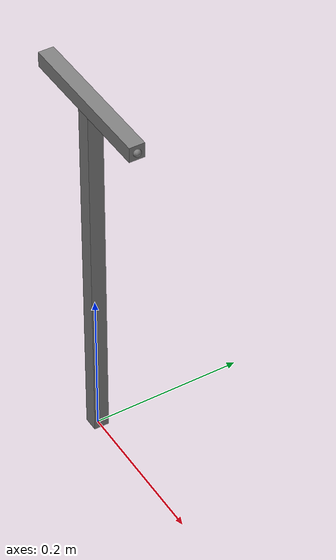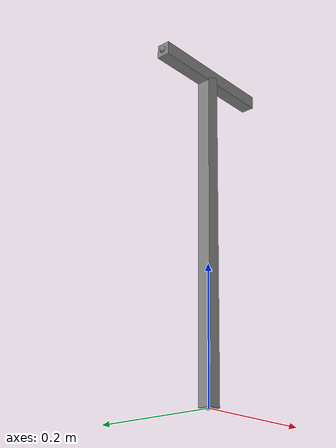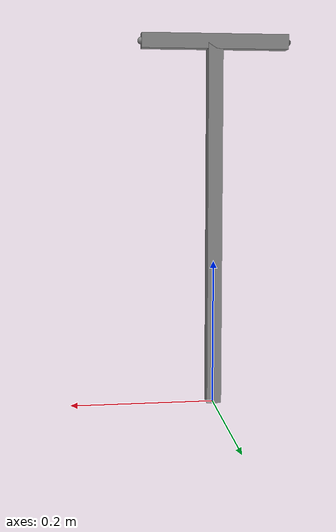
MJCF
<mujoco>
    <compiler angle = "degree"/>
    <option>
        <flag gravity = "enable" contact = "disable"/>

    </option>
    <asset>
        <texture name="grid" type="2d" builtin="checker" rgb1=".1 .2 .3"
            rgb2=".2 .3 .4" width="300" height="300" mark="none"/>
        <material name="grid" texture="grid" texrepeat="1 1"
            texuniform="true" reflectance=".2"/>
    </asset>

    <worldbody>

        <body name = "pendulum" gravcomp = "0">-->
            <joint name = "pend_joint" type = "hinge" axis = "0 1 0" pos = "0 0 0"/>
            <geom name = "pend_stick" type = "box" fromto = "0 0 0 0 0 .5" size = ".01 .01" mass = "1"/>
            <body name = "prop_bar" pos = "0 0 .5" gravcomp = "0">
                <joint name = "prop_orientation_joint" type = "hinge" axis = "0 1 0"/>
                <geom name = "propeller_body" type = "box" size = ".01 .01 .1" mass = "1" axisangle = "0 1 0 90"/>
                <site name = "IMU_loc"/>
                <site name = "prop_1" pos = "-.1 0 0"/>
                <site name = "prop_2" pos = ".1 0 0"/>
            </body>
        </body>

    </worldbody>

    <actuator>
        <motor name = "propeller1" site = "prop_1" gear = "0 0 1 0 0 0"/>
        <motor name = "propeller2" site = "prop_2" gear = "0 0 1 0 0 0"/>
    </actuator>

    <sensor>
        <accelerometer name = "IMU_acc" site = "IMU_loc" noise = ".01"/>
        <gyro name = "IMU_gyro" site = "IMU_loc" noise = ".01"/>

        <jointpos name = "angle_2_sens" joint = "prop_orientation_joint" noise = "0.05"/>
    </sensor>

</mujoco>
